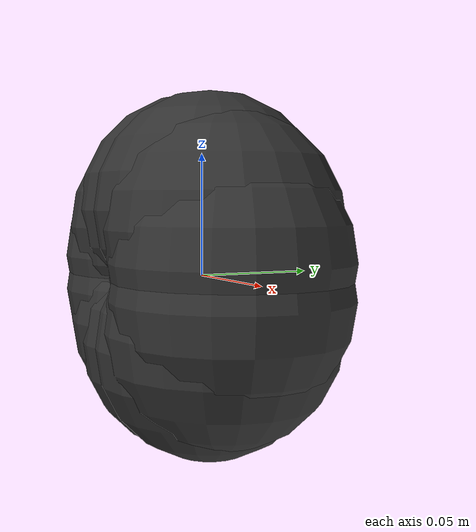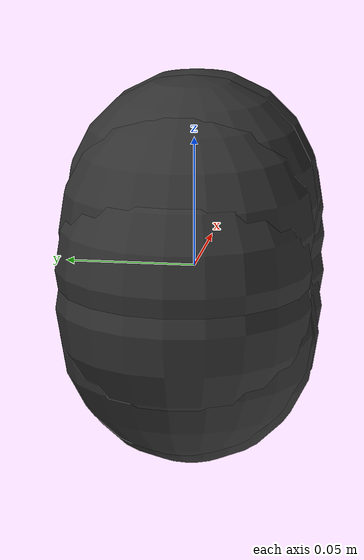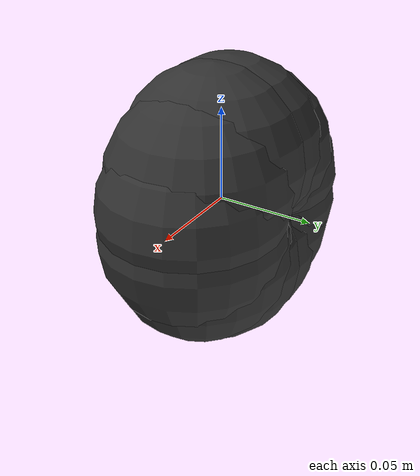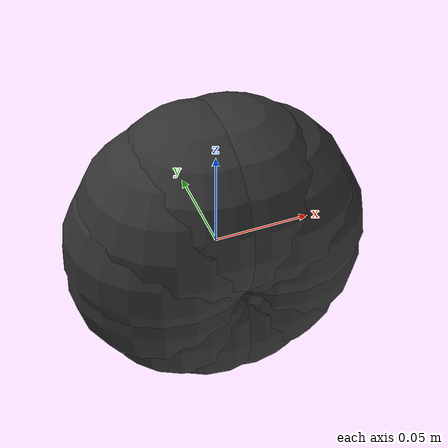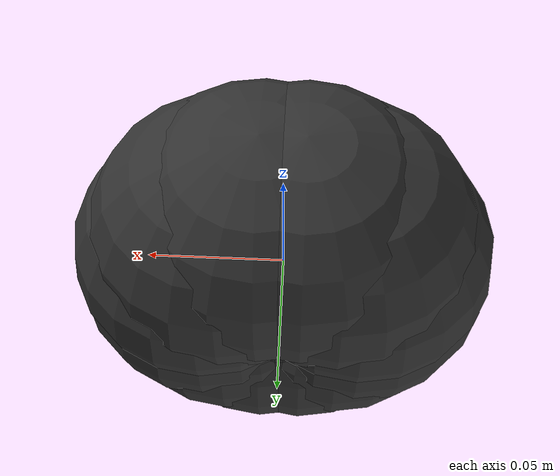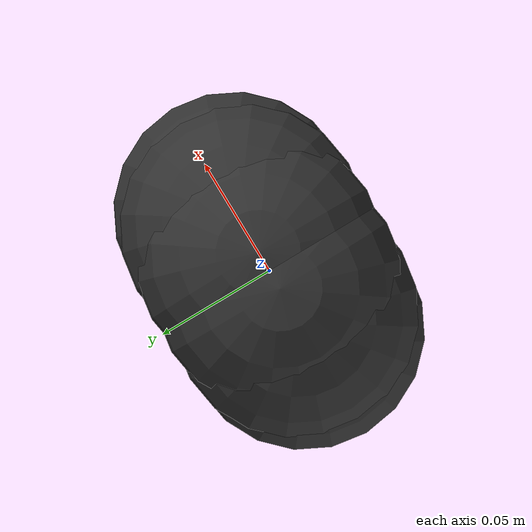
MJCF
<mujoco model="mecanum_2">
    <worldbody>
        <body name="wheel" pos="0 0 0">
            <inertial pos="0 0 0" quat="1 0 0 0" mass="2.3" diaginertia="0.0033212 0.0066424 0.0033212" />
            <joint name="wheel" pos="0 0 0" axis="0 1 0" />
            <geom size="0.026 0.0395" quat="0.707107 0.707107 0 0" type="cylinder" rgba="0.2 0.2 0.2 0.5" contype="0" conaffinity="0" group="2" />
            <body name="mecanum_2_roller_0_link" pos="0.0271318677175 0 -0.00726996204405">
                <joint name="mecanum_2_slipping_0_joint" type="hinge" pos="0 0 0" axis="0.258819045103 1 0.965925826289" damping="0.0001" limited="false" actuatorfrclimited="false" />
                <inertial pos="0 0 0" quat="1 0 0 0" mass="0.001" diaginertia="9.14357591915e-07 9.14357591915e-07 9.14357591915e-07" />
                <geom size="0.047811023622" quat="1 0 0 0" type="sphere" rgba="0.2 0.2 0.2 1" contype="2" conaffinity="0" condim="3" friction="1 0 0" />
            </body>
            <body name="mecanum_2_roller_1_link" pos="0.0271318677175 0 0.00726996204405">
                <joint name="mecanum_2_slipping_1_joint" type="hinge" pos="0 0 0" axis="-0.258819045103 1 0.965925826289" damping="0.0001" limited="false" actuatorfrclimited="false" />
                <inertial pos="0 0 0" quat="1 0 0 0" mass="0.001" diaginertia="9.14357591915e-07 9.14357591915e-07 9.14357591915e-07" />
                <geom size="0.047811023622" quat="1 0 0 0" type="sphere" rgba="0.2 0.2 0.2 1" contype="2" conaffinity="0" condim="3" friction="1 0 0" />
            </body>
            <body name="mecanum_2_roller_2_link" pos="0.0198619056734 0 0.0198619056734">
                <joint name="mecanum_2_slipping_2_joint" type="hinge" pos="0 0 0" axis="-0.707106781187 1 0.707106781187" damping="0.0001" limited="false" actuatorfrclimited="false" />
                <inertial pos="0 0 0" quat="1 0 0 0" mass="0.001" diaginertia="9.14357591915e-07 9.14357591915e-07 9.14357591915e-07" />
                <geom size="0.047811023622" quat="1 0 0 0" type="sphere" rgba="0.2 0.2 0.2 1" contype="2" conaffinity="0" condim="3" friction="1 0 0" />
            </body>
            <body name="mecanum_2_roller_3_link" pos="0.00726996204405 0 0.0271318677175">
                <joint name="mecanum_2_slipping_3_joint" type="hinge" pos="0 0 0" axis="-0.965925826289 1 0.258819045103" damping="0.0001" limited="false" actuatorfrclimited="false" />
                <inertial pos="0 0 0" quat="1 0 0 0" mass="0.001" diaginertia="9.14357591915e-07 9.14357591915e-07 9.14357591915e-07" />
                <geom size="0.047811023622" quat="1 0 0 0" type="sphere" rgba="0.2 0.2 0.2 1" contype="2" conaffinity="0" condim="3" friction="1 0 0" />
            </body>
            <body name="mecanum_2_roller_4_link" pos="-0.00726996204405 0 0.0271318677175">
                <joint name="mecanum_2_slipping_4_joint" type="hinge" pos="0 0 0" axis="-0.965925826289 1 -0.258819045103" damping="0.0001" limited="false" actuatorfrclimited="false" />
                <inertial pos="0 0 0" quat="1 0 0 0" mass="0.001" diaginertia="9.14357591915e-07 9.14357591915e-07 9.14357591915e-07" />
                <geom size="0.047811023622" quat="1 0 0 0" type="sphere" rgba="0.2 0.2 0.2 1" contype="2" conaffinity="0" condim="3" friction="1 0 0" />
            </body>
            <body name="mecanum_2_roller_5_link" pos="-0.0198619056734 0 0.0198619056734">
                <joint name="mecanum_2_slipping_5_joint" type="hinge" pos="0 0 0" axis="-0.707106781187 1 -0.707106781187" damping="0.0001" limited="false" actuatorfrclimited="false" />
                <inertial pos="0 0 0" quat="1 0 0 0" mass="0.001" diaginertia="9.14357591915e-07 9.14357591915e-07 9.14357591915e-07" />
                <geom size="0.047811023622" quat="1 0 0 0" type="sphere" rgba="0.2 0.2 0.2 1" contype="2" conaffinity="0" condim="3" friction="1 0 0" />
            </body>
            <body name="mecanum_2_roller_6_link" pos="-0.0271318677175 0 0.00726996204405">
                <joint name="mecanum_2_slipping_6_joint" type="hinge" pos="0 0 0" axis="-0.258819045103 1 -0.965925826289" damping="0.0001" limited="false" actuatorfrclimited="false" />
                <inertial pos="0 0 0" quat="1 0 0 0" mass="0.001" diaginertia="9.14357591915e-07 9.14357591915e-07 9.14357591915e-07" />
                <geom size="0.047811023622" quat="1 0 0 0" type="sphere" rgba="0.2 0.2 0.2 1" contype="2" conaffinity="0" condim="3" friction="1 0 0" />
            </body>
            <body name="mecanum_2_roller_7_link" pos="-0.0271318677175 0 -0.00726996204405">
                <joint name="mecanum_2_slipping_7_joint" type="hinge" pos="0 0 0" axis="0.258819045103 1 -0.965925826289" damping="0.0001" limited="false" actuatorfrclimited="false" />
                <inertial pos="0 0 0" quat="1 0 0 0" mass="0.001" diaginertia="9.14357591915e-07 9.14357591915e-07 9.14357591915e-07" />
                <geom size="0.047811023622" quat="1 0 0 0" type="sphere" rgba="0.2 0.2 0.2 1" contype="2" conaffinity="0" condim="3" friction="1 0 0" />
            </body>
            <body name="mecanum_2_roller_8_link" pos="-0.0198619056734 0 -0.0198619056734">
                <joint name="mecanum_2_slipping_8_joint" type="hinge" pos="0 0 0" axis="0.707106781187 1 -0.707106781187" damping="0.0001" limited="false" actuatorfrclimited="false" />
                <inertial pos="0 0 0" quat="1 0 0 0" mass="0.001" diaginertia="9.14357591915e-07 9.14357591915e-07 9.14357591915e-07" />
                <geom size="0.047811023622" quat="1 0 0 0" type="sphere" rgba="0.2 0.2 0.2 1" contype="2" conaffinity="0" condim="3" friction="1 0 0" />
            </body>
            <body name="mecanum_2_roller_9_link" pos="-0.00726996204405 0 -0.0271318677175">
                <joint name="mecanum_2_slipping_9_joint" type="hinge" pos="0 0 0" axis="0.965925826289 1 -0.258819045103" damping="0.0001" limited="false" actuatorfrclimited="false" />
                <inertial pos="0 0 0" quat="1 0 0 0" mass="0.001" diaginertia="9.14357591915e-07 9.14357591915e-07 9.14357591915e-07" />
                <geom size="0.047811023622" quat="1 0 0 0" type="sphere" rgba="0.2 0.2 0.2 1" contype="2" conaffinity="0" condim="3" friction="1 0 0" />
            </body>
            <body name="mecanum_2_roller_10_link" pos="0.00726996204405 0 -0.0271318677175">
                <joint name="mecanum_2_slipping_10_joint" type="hinge" pos="0 0 0" axis="0.965925826289 1 0.258819045103" damping="0.0001" limited="false" actuatorfrclimited="false" />
                <inertial pos="0 0 0" quat="1 0 0 0" mass="0.001" diaginertia="9.14357591915e-07 9.14357591915e-07 9.14357591915e-07" />
                <geom size="0.047811023622" quat="1 0 0 0" type="sphere" rgba="0.2 0.2 0.2 1" contype="2" conaffinity="0" condim="3" friction="1 0 0" />
            </body>
            <body name="mecanum_2_roller_11_link" pos="0.0198619056734 0 -0.0198619056734">
                <joint name="mecanum_2_slipping_11_joint" type="hinge" pos="0 0 0" axis="0.707106781187 1 0.707106781187" damping="0.0001" limited="false" actuatorfrclimited="false" />
                <inertial pos="0 0 0" quat="1 0 0 0" mass="0.001" diaginertia="9.14357591915e-07 9.14357591915e-07 9.14357591915e-07" />
                <geom size="0.047811023622" quat="1 0 0 0" type="sphere" rgba="0.2 0.2 0.2 1" contype="2" conaffinity="0" condim="3" friction="1 0 0" />
            </body>
        </body>
    </worldbody>
</mujoco>
